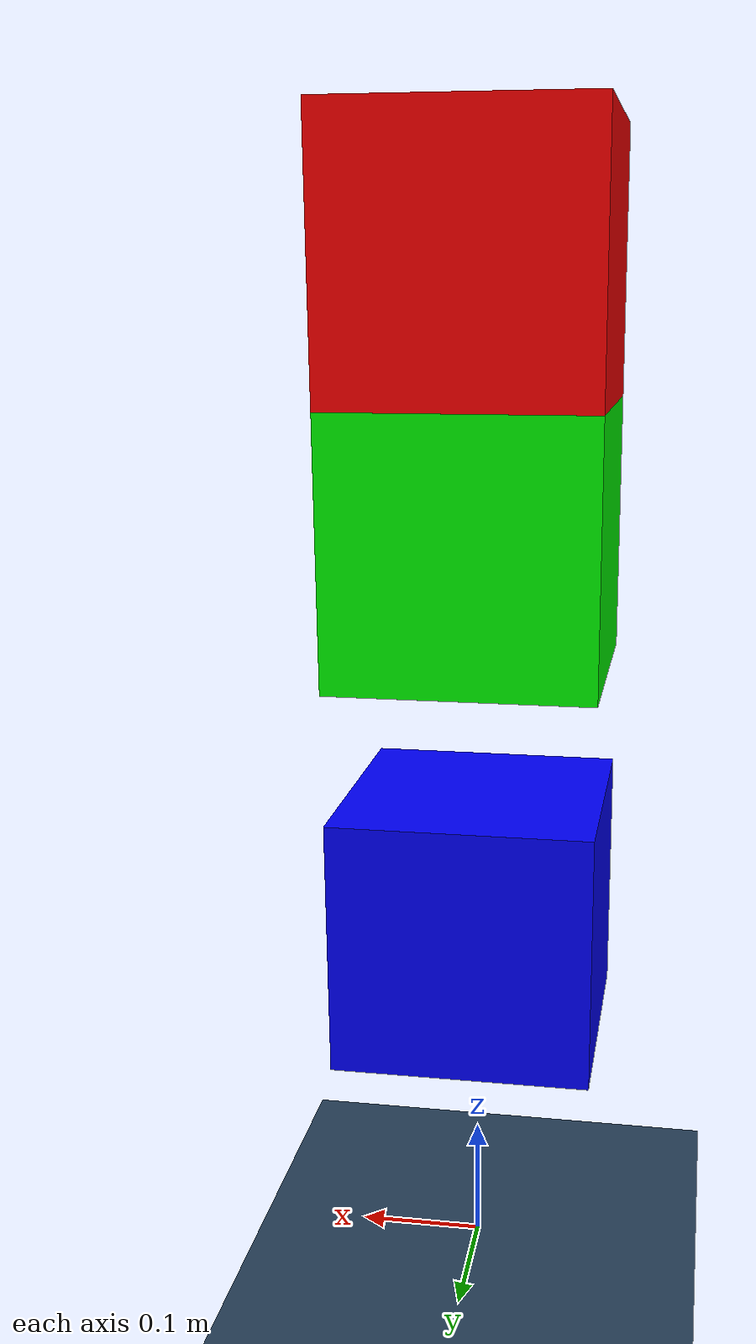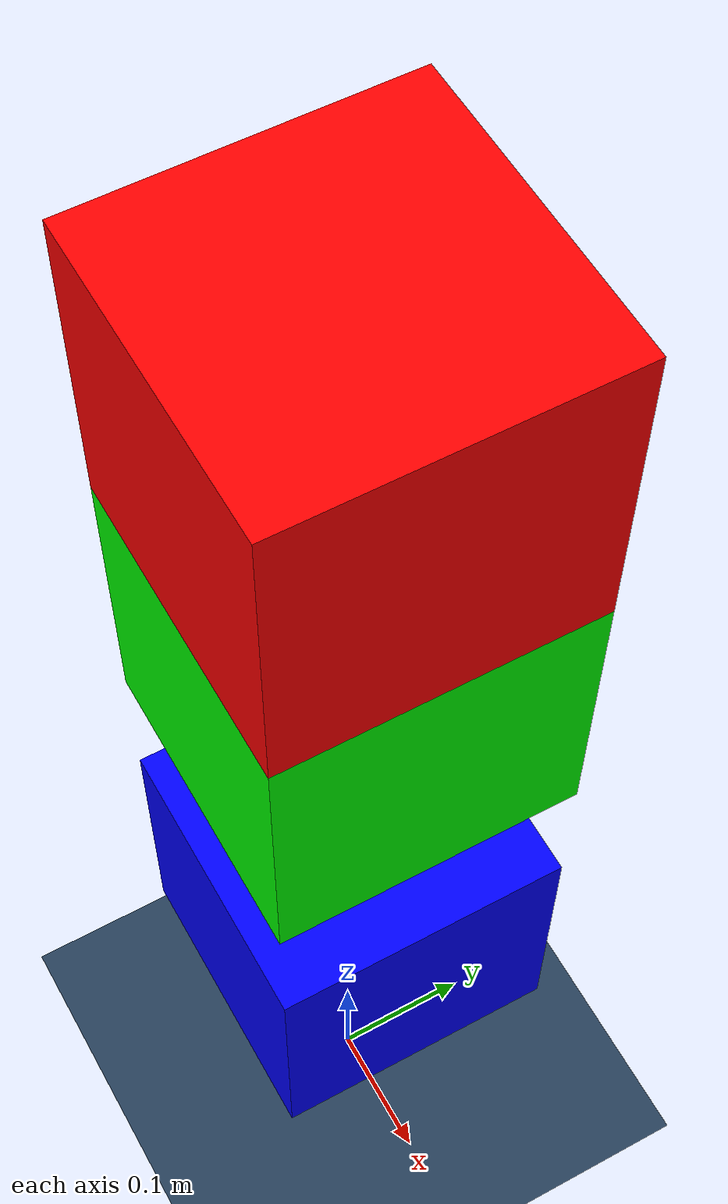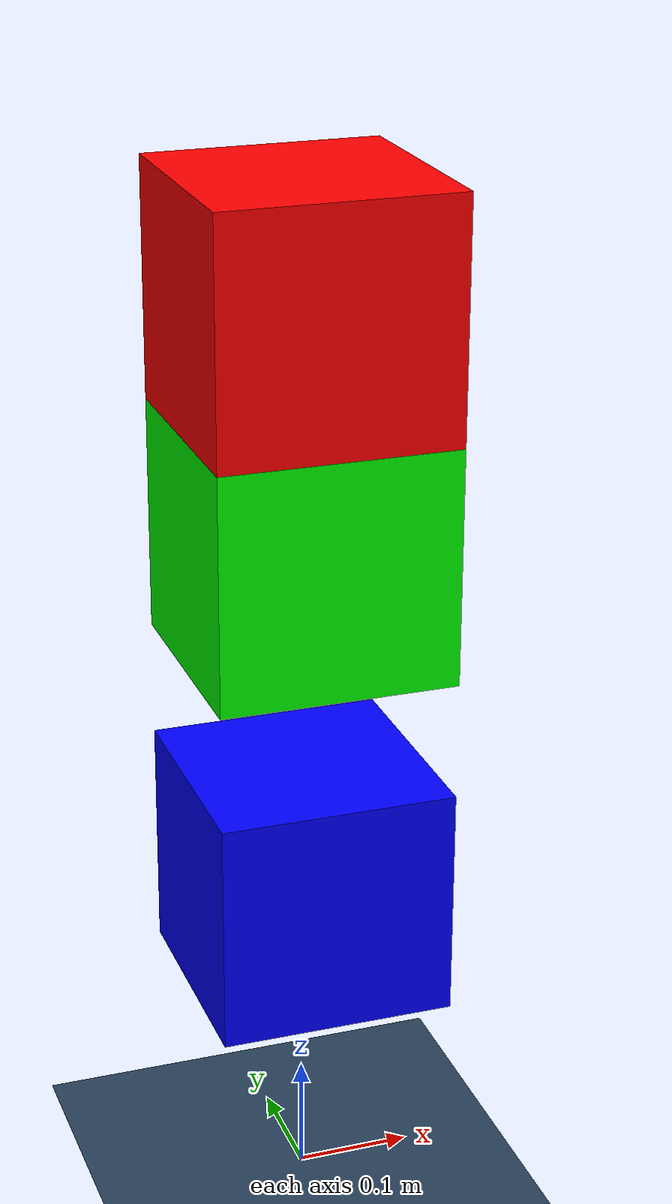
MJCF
<mujoco model="jk5">
    <compiler angle="radian" meshdir="../meshes/" coordinate="local"/>
    <size njmax="5000" nconmax="1000" />
    <option timestep="1e-3"/>
    <asset>
        <material name='floor_mat' texture="floor_tex"  shininess="0.8" texrepeat="10 10" specular="0.7"  reflectance="0.5" />
        <texture name="floor_tex" type="2d" builtin="checker" rgb1=".2 .3 .4" rgb2=".1 .2 .3" width="100" height="100" />
    </asset>
    <worldbody>
        <light name="light" mode="targetbody" target="last link" directional="true" pos="1 1 3" />
        <geom name='floor' material="floor_mat" pos='0 0 0' size='2.5 2.5 0.1'  type='plane'/>
        <!--robot-->
        <body name="last link" pos="0 0 0.8">
            <inertial pos="0 0 0" mass="1" diaginertia="0.1 0.1 0.1" />
            <geom type="box" pos="0 0 0" size="0.1 0.1 0.1" rgba="1 0 0 1"/>
            <site name="sensor on link" pos="0 0 -0.1" rgba="1 0 0 0" size="0.01 0.01 0.01" type="box"/>
            <joint type="free"/>
            <body name="gripper" pos="0 0 -0.2">
                <inertial pos="0 0 0" mass="1" diaginertia="0 0 0" />
                <geom type="box" pos="0 0 0" size="0.1 0.1 0.1" rgba="0 1 0 1"/>
                <site name="sensor on gripper" pos="0 0 -0.1" rgba="1 0 0 0" size="0.01 0.01 0.01" type="box"/>
            </body>
        </body>
        <!--object-->
        <body name="box" pos="0 0 0.3">
            <inertial pos="0 0 0" mass="4" diaginertia="0.1 0.1 0.1" />
            <geom type="box" size="0.1 0.1 0.1"  rgba="0 0 1 1"/>
            <joint type="free"/>
            <site name="sensor on box" pos="0 0 0" rgba="1 0 0 0" size="0.01 0.01 0.01" type="box"/>
        </body>
    </worldbody>
    <equality>
        <connect name="test" active="true" body1="gripper" body2="box" anchor="0 0 -0.2"/>
    </equality>
    <sensor>
        <force name="force on link" site="sensor on link"/>
        <force name="force on gripper" site="sensor on gripper"/>
        <force name="force on box" site="sensor on box"/>
    </sensor>
</mujoco>
